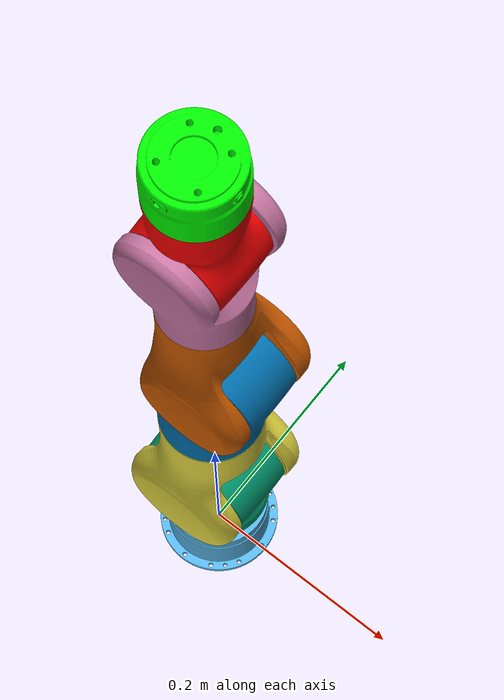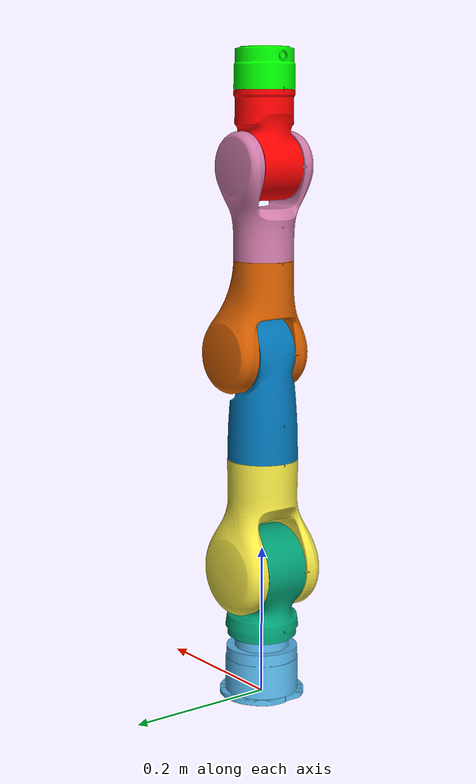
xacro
<?xml version="1.0"?>
<robot xmlns:xacro="http://www.ros.org/wiki/xacro" name="M6 SRS">
  <xacro:arg name="ros2_control_hardware_type" default="mock_components"/>

  <link name="world"/>

  <joint name="world_fixed" type="fixed">
    <parent link="world"/>
    <child link="base_link"/>
    <origin/>
  </joint>

  <xacro:include filename="$(find m6_srs_description)/xacro/robot.xacro"/>
  <xacro:include filename="$(find m6_srs_description)/xacro/ros2_control/interfaces.xacro"/>

  <ros2_control name="m6System" type="system">
    <hardware>
      <xacro:if value="${'$(arg ros2_control_hardware_type)' == 'gz'}">
        <plugin>gz_ros2_control/GazeboSimSystem</plugin>
      </xacro:if>
      <xacro:if value="${'$(arg ros2_control_hardware_type)' == 'mock_components'}">
        <plugin>mock_components/GenericSystem</plugin>
      </xacro:if>
      <xacro:if value="${'$(arg ros2_control_hardware_type)' == 'isaac'}">
        <plugin>topic_based_ros2_control/TopicBasedSystem</plugin>
        <param name="joint_commands_topic">/isaac/joint_command</param>
        <param name="joint_states_topic">/isaac/joint_states</param>
        <param name="sum_wrapped_joint_states">false</param>
        <param name="initialize_commands_from_state">true</param>
      </xacro:if>
    </hardware>

    <xacro:m6_interfaces name=""/>

  </ros2_control>

  <xacro:arg name="gazebo" default="false"/>
  <xacro:if value="$(arg gazebo)">
    <gazebo>
      <plugin filename="gz_ros2_control-system" name="gz_ros2_control::GazeboSimROS2ControlPlugin">
        <xacro:if value="${'$(arg type)' == 'left'}">
          <parameters>$(find m6_srs_description)/config/ros2_control/ros2_controllers.yaml</parameters>
        </xacro:if>
        <xacro:if value="${'$(arg type)' == 'right'}">
          <parameters>$(find m6_srs_description)/config/ros2_control/right.yaml</parameters>
        </xacro:if>
      </plugin>
    </gazebo>
  </xacro:if>
</robot>

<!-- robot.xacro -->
<robot name="DobotCR5" xmlns:xacro="http://www.ros.org/wiki/xacro">
	<xacro:arg name="collider" default="convex"/>
	<xacro:arg name="type" default="left"/>

	<xacro:include filename="$(find m6_srs_description)/xacro/arm.xacro"/>

	<xacro:if value="${'$(arg type)' == 'left'}">
		<xacro:M6_SRS/>
	</xacro:if>
	<xacro:if value="${'$(arg type)' == 'right'}">
		<xacro:M6_SRS direction="-1"/>
	</xacro:if>
</robot>

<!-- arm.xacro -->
<robot xmlns:xacro="http://www.ros.org/wiki/xacro">
	<xacro:property name="PI" value="3.1415926535897931"/>
	<xacro:macro name="M6_SRS" params="name:='' direction:=1 collider:=convex">
		<xacro:property name="prefix" value="${name + '_' if name else ''}"/>

		<!-- Base link -->
		<link name="${prefix}base_link">
			<inertial>
				<origin xyz="0.0001427 1.626E-05 0.039067" />
				<mass value="1.2946"/>
				<inertia
						ixx="0.00116453" ixy="1.06E-06" ixz="-8.13E-06"
						iyy="0.00114921" iyz="3.08E-06" izz="0.00141686"/>
			</inertial>
			<visual>
				<geometry>
					<mesh filename="file://$(find m6_srs_description)/meshes/base.obj"/>
				</geometry>
			</visual>
			<collision>
				<geometry>
					<mesh filename="file://$(find m6_srs_description)/meshes/base.obj"/>
				</geometry>
			</collision>
		</link>

		<!-- link 1 -->
		<link name="${prefix}link1">
			<inertial>
				<origin xyz="1.875E-05 0.006003 0.1438" />
				<mass value="2.0926"/>
				<inertia
						ixx="0.00515643" ixy="2.62E-06" ixz="3.78E-06"
						iyy="0.0055553" iyz="0.00038404" izz="0.00198037"/>
			</inertial>
			<visual>
				<geometry>
					<mesh filename="file://$(find m6_srs_description)/meshes/link1.obj"/>
				</geometry>
			</visual>
			<collision>
				<geometry>
					<mesh filename="file://$(find m6_srs_description)/meshes/link1.obj"/>
				</geometry>
			</collision>
		</link>

		<!-- Joint 1 -->
		<joint name="${prefix}joint1" type="revolute">

			<parent link="${prefix}base_link"/>
			<child link="${prefix}link1"/>
			<axis xyz="0 0 1"/>
			<limit lower="-3.1067" upper="3.1067" effort="108" velocity="3.1416"/>
		</joint>

		<!-- link 2 -->
		<link name="${prefix}link2">
			<inertial>
				<origin xyz="-7.03E-06 0.05542 0.010995" />
				<mass value="1.9432"/>
				<inertia
						ixx="0.01035460" ixy="-5.59E-06" ixz="2.06E-06"
						iyy="0.00316139" iyz="-0.00119042" izz="0.00953530"/>
			</inertial>
			<visual>
				<geometry>
					<mesh filename="file://$(find m6_srs_description)/meshes/link2.obj"/>
				</geometry>
			</visual>
			<collision>
				<geometry>
					<mesh filename="file://$(find m6_srs_description)/meshes/link2.obj"/>
				</geometry>
			</collision>
		</link>

		<!-- Joint 2 -->
		<joint name="${prefix}joint2" type="revolute">
			<origin xyz="0 0 0.1745" rpy="1.5708 0 0"/>
			<parent link="${prefix}link1"/>
			<child link="${prefix}link2"/>
			<axis xyz="0 0 1"/>
			<limit lower="-2.0944" upper="2.0944" effort="108" velocity="3.1416"/>
		</joint>

		<!-- link 3 -->
		<link name="${prefix}link3">
			<inertial>
				<origin xyz="0.0087411 0.0019043 0.23487" />
				<mass value="1.6913"/>
				<inertia
						ixx="0.00650115" ixy="3.338E-05" ixz="0.00079318"
						iyy="0.00689453" iyz="0.00017675" izz="0.00164437"/>
			</inertial>
			<visual>
				<geometry>
					<mesh filename="file://$(find m6_srs_description)/meshes/link3.obj"/>
				</geometry>
			</visual>
			<collision>
				<geometry>
					<mesh filename="file://$(find m6_srs_description)/meshes/link3.obj"/>
				</geometry>
			</collision>
		</link>

		<!-- Joint 3 -->
		<joint name="${prefix}joint3" type="revolute">
			<origin xyz="0 0 0" rpy="-1.5708 0 0"/>
			<parent link="${prefix}link2"/>
			<child link="${prefix}link3"/>
			<axis xyz="0 0 1"/>
			<limit lower="-3.1067" upper="3.1067" effort="66" velocity="3.1416"/>
		</joint>

		<!-- link 4 -->
		<link name="${prefix}link4">
			<inertial>
				<origin xyz="-0.00734397 0.04342803 0.01090610" />
				<mass value="1.44022"/>
				<inertia
						ixx="0.00530332" ixy="-0.00059200" ixz="0.00012225"
						iyy="0.00200619" iyz="-0.00069378" izz="0.00491970"/>
			</inertial>
			<visual>
				<geometry>
					<mesh filename="file://$(find m6_srs_description)/meshes/link4.obj"/>
				</geometry>
			</visual>
			<collision>
				<geometry>
					<mesh filename="file://$(find m6_srs_description)/meshes/link4.obj"/>
				</geometry>
			</collision>
		</link>

		<!-- Joint 4 -->
		<joint name="${prefix}joint4" type="revolute">
			<origin xyz="0.018 0 0.287" rpy="1.5708 0 0"/>
			<parent link="${prefix}link3"/>
			<child link="${prefix}link4"/>
			<axis xyz="0 0 1"/>
			<limit lower="-2.5307" upper="1.0472" effort="66" velocity="3.1416"/>
		</joint>

		<!-- link 5 -->
		<link name="${prefix}link5">
			<inertial>
				<origin xyz="0.00003950 -0.00840978 0.19192382" />
				<mass value="1.18638637"/>
				<inertia
						ixx="0.00379851" ixy="0.00000036" ixz="-0.00000177"
						iyy="0.00343926" iyz="-0.00050064" izz="0.00133506"/>
			</inertial>
			<visual>
				<geometry>
					<mesh filename="file://$(find m6_srs_description)/meshes/link5.obj"/>
				</geometry>
			</visual>
			<collision>
				<geometry>
					<mesh filename="file://$(find m6_srs_description)/meshes/link5.obj"/>
				</geometry>
			</collision>
		</link>

		<!-- Joint 5 -->
		<joint name="${prefix}joint5" type="revolute">
			<origin xyz="-0.018 0 0" rpy="-1.5708 0 0"/>
			<parent link="${prefix}link4"/>
			<child link="${prefix}link5"/>
			<axis xyz="0 0 1"/>
			<limit lower="-3.1067" upper="3.1067" effort="18" velocity="3.1416"/>
		</joint>

		<!-- link 6 -->
		<link name="${prefix}link6">
			<inertial>
				<origin xyz="0.00001592 0.03649 -0.00142323" />
				<mass value="1.04934394"/>
				<inertia
						ixx="0.00231171" ixy="-0.00000121" ixz="-0.00000025"
						iyy="0.00065728" iyz="0.00006690" izz="0.00243087"/>
			</inertial>
			<visual>

				<geometry>
					<mesh filename="file://$(find m6_srs_description)/meshes/link6.obj"/>
				</geometry>
				<material name="">
					<color rgba="1 0 0 1"/>
				</material>
			</visual>
			<collision>

				<geometry>
					<mesh filename="file://$(find m6_srs_description)/meshes/link6.obj"/>
				</geometry>
			</collision>
		</link>

		<!-- Joint 6 -->
		<joint name="${prefix}joint6" type="revolute">
			<origin xyz="0 0 0.242" rpy="1.5708 0 0"/>
			<parent link="${prefix}link5"/>
			<child link="${prefix}link6"/>
			<axis xyz="0 0 1"/>
			<limit lower="-1.9199" upper="1.9199" effort="18" velocity="3.1416"/>
		</joint>

		<!-- link 7 -->
		<link name="${prefix}link7">
			<inertial>
				<origin xyz="-7.58E-05 1.6597E-04 0.1183953"/>
				<mass value="0.5268"/>
				<inertia
						ixx="0.00768725" ixy="0.00000094" ixz="-0.00000609"
						iyy="0.00768792" iyz="-0.00001163" izz="0.00038293"/>
			</inertial>
			<visual>
				<geometry>
					<mesh filename="file://$(find m6_srs_description)/meshes/link7.obj" scale="1 ${direction} 1"/>
				</geometry>
				<material name="">
					<color rgba="0 1 0 1"/>
				</material>
			</visual>
			<collision>
				<geometry>
					<mesh filename="file://$(find m6_srs_description)/meshes/link7.obj" scale="1 ${direction} 1"/>
				</geometry>
			</collision>
		</link>

		<!-- Joint 7 -->
		<joint name="${prefix}joint7" type="revolute">
			<origin xyz="0 0 0" rpy="-1.5708 0 0"/>
			<parent link="${prefix}link6"/>
			<child link="${prefix}link7"/>
			<axis xyz="0 0 1"/>
			<limit lower="-3.1067" upper="3.1067" effort="18" velocity="3.1416"/>
		</joint>

	</xacro:macro>
</robot>
